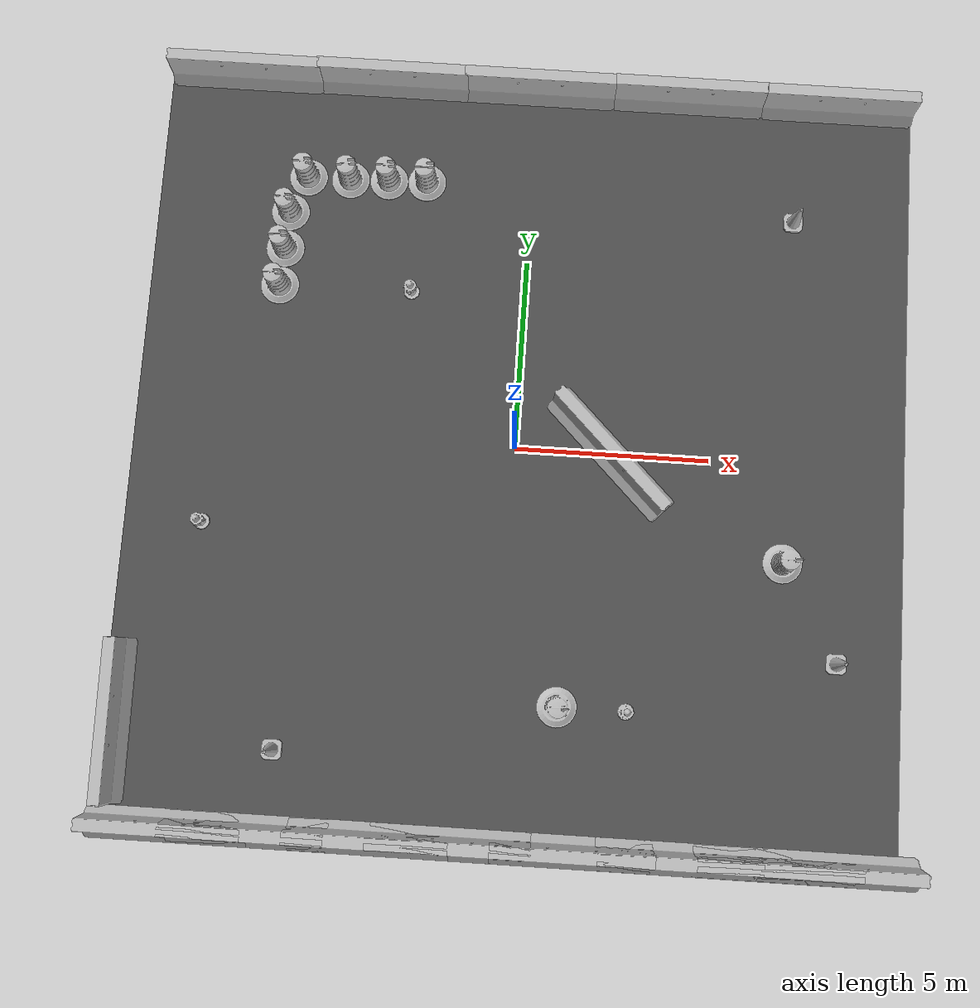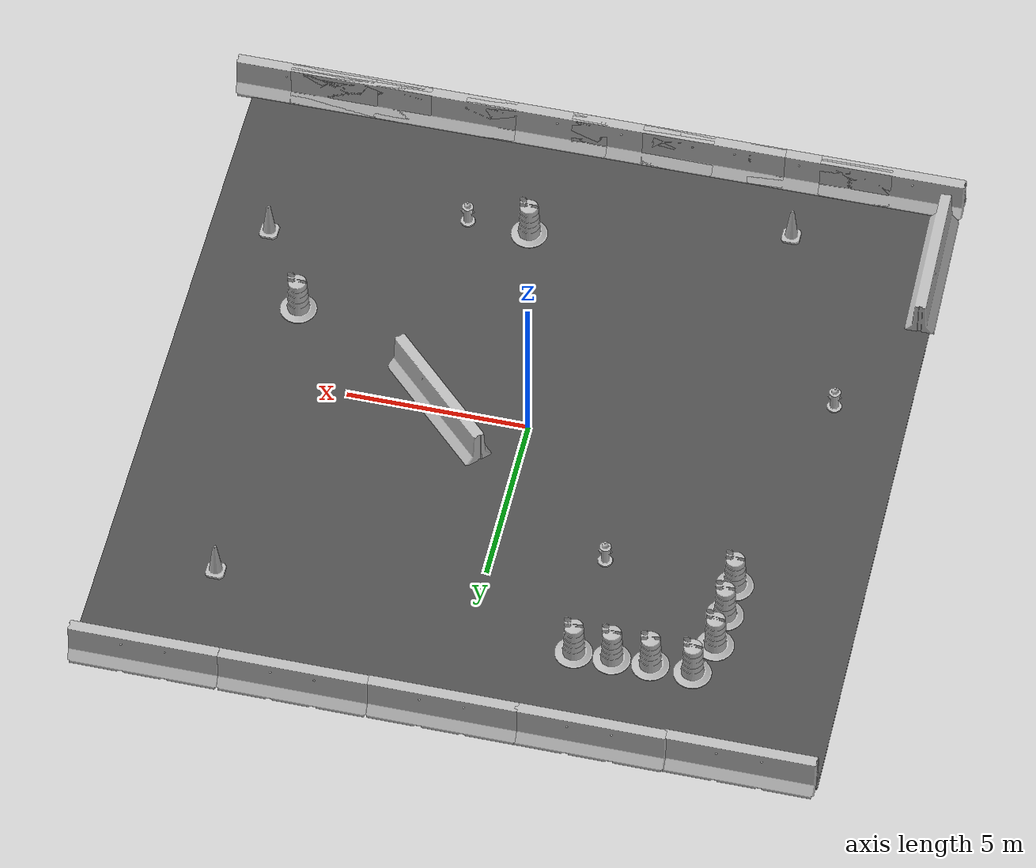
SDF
<sdf version="1.6">
 <world name="default">
  <model name="ground_plane">
   <static>1</static>
   <link name="link">
    <collision name="collision">
     <geometry><plane><normal>0 0 1</normal><size>100 100</size></plane></geometry>
     <surface><friction><ode><mu>100</mu><mu2>50</mu2></ode></friction></surface>
    </collision>
    <visual name="visual">
     <cast_shadows>0</cast_shadows>
     <geometry><plane><normal>0 0 1</normal><size>100 100</size></plane></geometry>
     <material>
      <script><uri>file://media/materials/scripts/gazebo.material</uri><name>Gazebo/Grey</name></script>
     </material>
    </visual>
    <velocity_decay><linear>0</linear><angular>0</angular></velocity_decay>
   </link>
  </model>
  <model name="jersey_barrier">
   <static>1</static>
   <link name="link">
    <visual name="visual">
     <geometry><mesh><uri>model://jersey_barrier/meshes/jersey_barrier.dae</uri></mesh></geometry>
    </visual>
    <collision name="upright">
     <pose>0 0 0.5715 0 -0 0</pose>
     <geometry><box><size>4.06542 0.3063 1.143</size></box></geometry>
    </collision>
    <collision name="base">
     <pose>0 0 0.032258 0 -0 0</pose>
     <geometry><box><size>4.06542 0.8107 0.064516</size></box></geometry>
    </collision>
    <collision name="base2">
     <pose>0 0 0.1 0 -0 0</pose>
     <geometry><box><size>4.06542 0.65 0.1</size></box></geometry>
    </collision>
    <collision name="base3">
     <pose>0 0 0.2 0 -0 0</pose>
     <geometry><box><size>4.06542 0.5 0.1</size></box></geometry>
    </collision>
    <collision name="left-angle">
     <pose>0 -0.224 0.2401 0.9 -0 0</pose>
     <geometry><box><size>4.06542 0.5 0.064516</size></box></geometry>
    </collision>
    <collision name="right-angle">
     <pose>0 0.224 0.2401 -0.9 0 0</pose>
     <geometry><box><size>4.06542 0.5 0.064516</size></box></geometry>
    </collision>
    <velocity_decay><linear>0</linear><angular>0</angular></velocity_decay>
   </link>
   <pose>-8 -10 0 0 -0 0</pose>
  </model>
  <model name="jersey_barrier_0">
   <static>1</static>
   <link name="link">
    <visual name="visual">
     <geometry><mesh><uri>model://jersey_barrier/meshes/jersey_barrier.dae</uri></mesh></geometry>
    </visual>
    <collision name="upright">
     <pose>0 0 0.5715 0 -0 0</pose>
     <geometry><box><size>4.06542 0.3063 1.143</size></box></geometry>
    </collision>
    <collision name="base">
     <pose>0 0 0.032258 0 -0 0</pose>
     <geometry><box><size>4.06542 0.8107 0.064516</size></box></geometry>
    </collision>
    <collision name="base2">
     <pose>0 0 0.1 0 -0 0</pose>
     <geometry><box><size>4.06542 0.65 0.1</size></box></geometry>
    </collision>
    <collision name="base3">
     <pose>0 0 0.2 0 -0 0</pose>
     <geometry><box><size>4.06542 0.5 0.1</size></box></geometry>
    </collision>
    <collision name="left-angle">
     <pose>0 -0.224 0.2401 0.9 -0 0</pose>
     <geometry><box><size>4.06542 0.5 0.064516</size></box></geometry>
    </collision>
    <collision name="right-angle">
     <pose>0 0.224 0.2401 -0.9 0 0</pose>
     <geometry><box><size>4.06542 0.5 0.064516</size></box></geometry>
    </collision>
    <velocity_decay><linear>0</linear><angular>0</angular></velocity_decay>
   </link>
   <pose>-3 -10 0 0 -0 0</pose>
  </model>
  <model name="jersey_barrier_1">
   <static>1</static>
   <link name="link">
    <visual name="visual">
     <geometry><mesh><uri>model://jersey_barrier/meshes/jersey_barrier.dae</uri></mesh></geometry>
    </visual>
    <collision name="upright">
     <pose>0 0 0.5715 0 -0 0</pose>
     <geometry><box><size>4.06542 0.3063 1.143</size></box></geometry>
    </collision>
    <collision name="base">
     <pose>0 0 0.032258 0 -0 0</pose>
     <geometry><box><size>4.06542 0.8107 0.064516</size></box></geometry>
    </collision>
    <collision name="base2">
     <pose>0 0 0.1 0 -0 0</pose>
     <geometry><box><size>4.06542 0.65 0.1</size></box></geometry>
    </collision>
    <collision name="base3">
     <pose>0 0 0.2 0 -0 0</pose>
     <geometry><box><size>4.06542 0.5 0.1</size></box></geometry>
    </collision>
    <collision name="left-angle">
     <pose>0 -0.224 0.2401 0.9 -0 0</pose>
     <geometry><box><size>4.06542 0.5 0.064516</size></box></geometry>
    </collision>
    <collision name="right-angle">
     <pose>0 0.224 0.2401 -0.9 0 0</pose>
     <geometry><box><size>4.06542 0.5 0.064516</size></box></geometry>
    </collision>
    <velocity_decay><linear>0</linear><angular>0</angular></velocity_decay>
   </link>
   <pose>2 -10 0 0 -0 0</pose>
  </model>
  <model name="jersey_barrier_2">
   <static>1</static>
   <link name="link">
    <visual name="visual">
     <geometry><mesh><uri>model://jersey_barrier/meshes/jersey_barrier.dae</uri></mesh></geometry>
    </visual>
    <collision name="upright">
     <pose>0 0 0.5715 0 -0 0</pose>
     <geometry><box><size>4.06542 0.3063 1.143</size></box></geometry>
    </collision>
    <collision name="base">
     <pose>0 0 0.032258 0 -0 0</pose>
     <geometry><box><size>4.06542 0.8107 0.064516</size></box></geometry>
    </collision>
    <collision name="base2">
     <pose>0 0 0.1 0 -0 0</pose>
     <geometry><box><size>4.06542 0.65 0.1</size></box></geometry>
    </collision>
    <collision name="base3">
     <pose>0 0 0.2 0 -0 0</pose>
     <geometry><box><size>4.06542 0.5 0.1</size></box></geometry>
    </collision>
    <collision name="left-angle">
     <pose>0 -0.224 0.2401 0.9 -0 0</pose>
     <geometry><box><size>4.06542 0.5 0.064516</size></box></geometry>
    </collision>
    <collision name="right-angle">
     <pose>0 0.224 0.2401 -0.9 0 0</pose>
     <geometry><box><size>4.06542 0.5 0.064516</size></box></geometry>
    </collision>
    <velocity_decay><linear>0</linear><angular>0</angular></velocity_decay>
   </link>
   <pose>7 -10 0 0 -0 0</pose>
  </model>
  <model name="fire_hydrant">
   <static>1</static>
   <link name="link">
    <collision name="collision">
     <geometry><mesh><uri>model://fire_hydrant/meshes/fire_hydrant.dae</uri></mesh></geometry>
    </collision>
    <visual name="visual">
     <geometry><mesh><uri>model://fire_hydrant/meshes/fire_hydrant.dae</uri></mesh></geometry>
    </visual>
    <velocity_decay><linear>0</linear><angular>0</angular></velocity_decay>
   </link>
   <pose>3.18024 -6.51118 0 0 -0 0</pose>
  </model>
  <model name="fire_hydrant_0">
   <static>1</static>
   <link name="link">
    <collision name="collision">
     <geometry><mesh><uri>model://fire_hydrant/meshes/fire_hydrant.dae</uri></mesh></geometry>
    </collision>
    <visual name="visual">
     <geometry><mesh><uri>model://fire_hydrant/meshes/fire_hydrant.dae</uri></mesh></geometry>
    </visual>
    <velocity_decay><linear>0</linear><angular>0</angular></velocity_decay>
   </link>
   <pose>-3 4 0 0 -0 0</pose>
  </model>
  <model name="fire_hydrant_1">
   <static>1</static>
   <link name="link">
    <collision name="collision">
     <geometry><mesh><uri>model://fire_hydrant/meshes/fire_hydrant.dae</uri></mesh></geometry>
    </collision>
    <visual name="visual">
     <geometry><mesh><uri>model://fire_hydrant/meshes/fire_hydrant.dae</uri></mesh></geometry>
    </visual>
    <velocity_decay><linear>0</linear><angular>0</angular></velocity_decay>
   </link>
   <pose>-7.90686 -2.41363 0 0 -0 0</pose>
  </model>
  <model name="jersey_barrier_15">
   <static>1</static>
   <link name="link">
    <visual name="visual">
     <geometry><mesh><uri>model://jersey_barrier/meshes/jersey_barrier.dae</uri></mesh></geometry>
    </visual>
    <collision name="upright">
     <pose>0 0 0.5715 0 -0 0</pose>
     <geometry><box><size>4.06542 0.3063 1.143</size></box></geometry>
    </collision>
    <collision name="base">
     <pose>0 0 0.032258 0 -0 0</pose>
     <geometry><box><size>4.06542 0.8107 0.064516</size></box></geometry>
    </collision>
    <collision name="base2">
     <pose>0 0 0.1 0 -0 0</pose>
     <geometry><box><size>4.06542 0.65 0.1</size></box></geometry>
    </collision>
    <collision name="base3">
     <pose>0 0 0.2 0 -0 0</pose>
     <geometry><box><size>4.06542 0.5 0.1</size></box></geometry>
    </collision>
    <collision name="left-angle">
     <pose>0 -0.224 0.2401 0.9 -0 0</pose>
     <geometry><box><size>4.06542 0.5 0.064516</size></box></geometry>
    </collision>
    <collision name="right-angle">
     <pose>0 0.224 0.2401 -0.9 0 0</pose>
     <geometry><box><size>4.06542 0.5 0.064516</size></box></geometry>
    </collision>
    <velocity_decay><linear>0</linear><angular>0</angular></velocity_decay>
   </link>
   <pose>2.45495 0 0 0 -0 2.36</pose>
  </model>
  <model name="Construction Cone">
   <link name="link">
    <collision name="collision">
     <geometry>
      <mesh><scale>10 10 10</scale><uri>model://construction_cone/meshes/construction_cone.dae</uri></mesh>
     </geometry>
    </collision>
    <visual name="visual">
     <geometry>
      <mesh><scale>10 10 10</scale><uri>model://construction_cone/meshes/construction_cone.dae</uri></mesh>
     </geometry>
    </visual>
    <velocity_decay><linear>0</linear><angular>0</angular></velocity_decay>
    <inertial>
     <inertia><ixx>1</ixx><ixy>0</ixy><ixz>0</ixz><iyy>1</iyy><iyz>0</iyz><izz>1</izz></inertia>
     <mass>1</mass>
    </inertial>
   </link>
   <pose>-5.59121 -8 0.05 -0 -1e-06 2e-06</pose>
   <static>0</static>
  </model>
  <model name="Construction Barrel">
   <link name="link">
    <inertial>
     <pose>0 0 0.4 0 -0 0</pose>
     <mass>500</mass>
     <inertia><ixx>51.2096</ixx><iyy>51.2096</iyy><izz>25</izz><ixy>0</ixy><ixz>0</ixz><iyz>0</iyz></inertia>
    </inertial>
    <collision name="collision">
     <geometry><mesh><uri>model://construction_barrel/meshes/construction_barrel.dae</uri></mesh></geometry>
    </collision>
    <visual name="visual">
     <geometry><mesh><uri>model://construction_barrel/meshes/construction_barrel.dae</uri></mesh></geometry>
    </visual>
    <velocity_decay><linear>0</linear><angular>0</angular></velocity_decay>
   </link>
   <pose>7.00008 -2.54628 0.049877 0.000487 -3e-06 0.000309</pose>
   <static>0</static>
  </model>
  <model name="Construction Cone_0">
   <link name="link">
    <collision name="collision">
     <geometry>
      <mesh><scale>10 10 10</scale><uri>model://construction_cone/meshes/construction_cone.dae</uri></mesh>
     </geometry>
    </collision>
    <visual name="visual">
     <geometry>
      <mesh><scale>10 10 10</scale><uri>model://construction_cone/meshes/construction_cone.dae</uri></mesh>
     </geometry>
    </visual>
    <velocity_decay><linear>0</linear><angular>0</angular></velocity_decay>
    <inertial>
     <inertia><ixx>1</ixx><ixy>0</ixy><ixz>0</ixz><iyy>1</iyy><iyz>0</iyz><izz>1</izz></inertia>
     <mass>1</mass>
    </inertial>
   </link>
   <pose>6.99685 6.55732 0.05 0 -1e-06 -0.00701</pose>
   <static>0</static>
  </model>
  <model name="Construction Barrel_0">
   <link name="link">
    <inertial>
     <pose>0 0 0.4 0 -0 0</pose>
     <mass>500</mass>
     <inertia><ixx>51.2096</ixx><iyy>51.2096</iyy><izz>25</izz><ixy>0</ixy><ixz>0</ixz><iyz>0</iyz></inertia>
    </inertial>
    <collision name="collision">
     <geometry><mesh><uri>model://construction_barrel/meshes/construction_barrel.dae</uri></mesh></geometry>
    </collision>
    <visual name="visual">
     <geometry><mesh><uri>model://construction_barrel/meshes/construction_barrel.dae</uri></mesh></geometry>
    </visual>
    <velocity_decay><linear>0</linear><angular>0</angular></velocity_decay>
   </link>
   <pose>1.4518 -6.51121 0.049917 -0.000164 -0.000339 -5.5e-05</pose>
   <static>0</static>
  </model>
  <model name="asphalt_plane">
   <static>1</static>
   <link name="link">
    <collision name="collision"><geometry><box><size>20 20 0.1</size></box></geometry></collision>
    <visual name="visual">
     <cast_shadows>0</cast_shadows>
     <geometry><box><size>20 20 0.1</size></box></geometry>
     <material>
      <script>
       <uri>model://asphalt_plane/materials/scripts</uri>
       <uri>model://asphalt_plane/materials/textures</uri>
       <name>vrc/asphalt</name>
      </script>
     </material>
    </visual>
    <velocity_decay><linear>0</linear><angular>0</angular></velocity_decay>
   </link>
   <pose>0.076733 -0.110379 0 0 -0 0</pose>
  </model>
  <model name="Construction Barrel_1">
   <link name="link">
    <inertial>
     <pose>0 0 0.4 0 -0 0</pose>
     <mass>500</mass>
     <inertia><ixx>51.2096</ixx><iyy>51.2096</iyy><izz>25</izz><ixy>0</ixy><ixz>0</ixz><iyz>0</iyz></inertia>
    </inertial>
    <collision name="collision">
     <geometry><mesh><uri>model://construction_barrel/meshes/construction_barrel.dae</uri></mesh></geometry>
    </collision>
    <visual name="visual">
     <geometry><mesh><uri>model://construction_barrel/meshes/construction_barrel.dae</uri></mesh></geometry>
    </visual>
    <velocity_decay><linear>0</linear><angular>0</angular></velocity_decay>
   </link>
   <pose>-6.50467 3.98277 0.049886 0.000435 0.000115 -0.009564</pose>
   <static>0</static>
  </model>
  <model name="Construction Barrel_2">
   <link name="link">
    <inertial>
     <pose>0 0 0.4 0 -0 0</pose>
     <mass>500</mass>
     <inertia><ixx>51.2096</ixx><iyy>51.2096</iyy><izz>25</izz><ixy>0</ixy><ixz>0</ixz><iyz>0</iyz></inertia>
    </inertial>
    <collision name="collision">
     <geometry><mesh><uri>model://construction_barrel/meshes/construction_barrel.dae</uri></mesh></geometry>
    </collision>
    <visual name="visual">
     <geometry><mesh><uri>model://construction_barrel/meshes/construction_barrel.dae</uri></mesh></geometry>
    </visual>
    <velocity_decay><linear>0</linear><angular>0</angular></velocity_decay>
   </link>
   <pose>-6.45061 4.99646 0.04991 -0.000176 -0.000354 0.064909</pose>
   <static>0</static>
  </model>
  <model name="Construction Barrel_3">
   <link name="link">
    <inertial>
     <pose>0 0 0.4 0 -0 0</pose>
     <mass>500</mass>
     <inertia><ixx>51.2096</ixx><iyy>51.2096</iyy><izz>25</izz><ixy>0</ixy><ixz>0</ixz><iyz>0</iyz></inertia>
    </inertial>
    <collision name="collision">
     <geometry><mesh><uri>model://construction_barrel/meshes/construction_barrel.dae</uri></mesh></geometry>
    </collision>
    <visual name="visual">
     <geometry><mesh><uri>model://construction_barrel/meshes/construction_barrel.dae</uri></mesh></geometry>
    </visual>
    <velocity_decay><linear>0</linear><angular>0</angular></velocity_decay>
   </link>
   <pose>-6.4017 6.01119 0.049863 -0.000145 -0.0005 -0.120744</pose>
   <static>0</static>
  </model>
  <model name="Construction Barrel_4">
   <link name="link">
    <inertial>
     <pose>0 0 0.4 0 -0 0</pose>
     <mass>500</mass>
     <inertia><ixx>51.2096</ixx><iyy>51.2096</iyy><izz>25</izz><ixy>0</ixy><ixz>0</ixz><iyz>0</iyz></inertia>
    </inertial>
    <collision name="collision">
     <geometry><mesh><uri>model://construction_barrel/meshes/construction_barrel.dae</uri></mesh></geometry>
    </collision>
    <visual name="visual">
     <geometry><mesh><uri>model://construction_barrel/meshes/construction_barrel.dae</uri></mesh></geometry>
    </visual>
    <velocity_decay><linear>0</linear><angular>0</angular></velocity_decay>
   </link>
   <pose>-6.0062 7.00897 0.0499 0.000407 9.3e-05 -0.049538</pose>
   <static>0</static>
  </model>
  <model name="Construction Barrel_5">
   <link name="link">
    <inertial>
     <pose>0 0 0.4 0 -0 0</pose>
     <mass>500</mass>
     <inertia><ixx>51.2096</ixx><iyy>51.2096</iyy><izz>25</izz><ixy>0</ixy><ixz>0</ixz><iyz>0</iyz></inertia>
    </inertial>
    <collision name="collision">
     <geometry><mesh><uri>model://construction_barrel/meshes/construction_barrel.dae</uri></mesh></geometry>
    </collision>
    <visual name="visual">
     <geometry><mesh><uri>model://construction_barrel/meshes/construction_barrel.dae</uri></mesh></geometry>
    </visual>
    <velocity_decay><linear>0</linear><angular>0</angular></velocity_decay>
   </link>
   <pose>-4.8756 7.0082 0.049921 -0.000156 -0.000328 0.146114</pose>
   <static>0</static>
  </model>
  <model name="Construction Barrel_6">
   <link name="link">
    <inertial>
     <pose>0 0 0.4 0 -0 0</pose>
     <mass>500</mass>
     <inertia><ixx>51.2096</ixx><iyy>51.2096</iyy><izz>25</izz><ixy>0</ixy><ixz>0</ixz><iyz>0</iyz></inertia>
    </inertial>
    <collision name="collision">
     <geometry><mesh><uri>model://construction_barrel/meshes/construction_barrel.dae</uri></mesh></geometry>
    </collision>
    <visual name="visual">
     <geometry><mesh><uri>model://construction_barrel/meshes/construction_barrel.dae</uri></mesh></geometry>
    </visual>
    <velocity_decay><linear>0</linear><angular>0</angular></velocity_decay>
   </link>
   <pose>-3.84411 7.04008 0.049888 1e-06 -0.000441 0.022475</pose>
   <static>0</static>
  </model>
  <model name="Construction Barrel_7">
   <link name="link">
    <inertial>
     <pose>0 0 0.4 0 -0 0</pose>
     <mass>500</mass>
     <inertia><ixx>51.2096</ixx><iyy>51.2096</iyy><izz>25</izz><ixy>0</ixy><ixz>0</ixz><iyz>0</iyz></inertia>
    </inertial>
    <collision name="collision">
     <geometry><mesh><uri>model://construction_barrel/meshes/construction_barrel.dae</uri></mesh></geometry>
    </collision>
    <visual name="visual">
     <geometry><mesh><uri>model://construction_barrel/meshes/construction_barrel.dae</uri></mesh></geometry>
    </visual>
    <velocity_decay><linear>0</linear><angular>0</angular></velocity_decay>
   </link>
   <pose>-2.82746 7.06011 0.049884 -0.000115 -0.000453 0.075127</pose>
   <static>0</static>
  </model>
  <model name="Construction Cone_1">
   <link name="link">
    <collision name="collision">
     <geometry>
      <mesh><scale>10 10 10</scale><uri>model://construction_cone/meshes/construction_cone.dae</uri></mesh>
     </geometry>
    </collision>
    <visual name="visual">
     <geometry>
      <mesh><scale>10 10 10</scale><uri>model://construction_cone/meshes/construction_cone.dae</uri></mesh>
     </geometry>
    </visual>
    <velocity_decay><linear>0</linear><angular>0</angular></velocity_decay>
    <inertial>
     <inertia><ixx>1</ixx><ixy>0</ixy><ixz>0</ixz><iyy>1</iyy><iyz>0</iyz><izz>1</izz></inertia>
     <mass>1</mass>
    </inertial>
   </link>
   <pose>8.42887 -5 0.04902 1e-06 -0 2e-06</pose>
   <static>0</static>
  </model>
  <model name="jersey_barrier_16">
   <static>1</static>
   <link name="link">
    <visual name="visual">
     <geometry><mesh><uri>model://jersey_barrier/meshes/jersey_barrier.dae</uri></mesh></geometry>
    </visual>
    <collision name="upright">
     <pose>0 0 0.5715 0 -0 0</pose>
     <geometry><box><size>4.06542 0.3063 1.143</size></box></geometry>
    </collision>
    <collision name="base">
     <pose>0 0 0.032258 0 -0 0</pose>
     <geometry><box><size>4.06542 0.8107 0.064516</size></box></geometry>
    </collision>
    <collision name="base2">
     <pose>0 0 0.1 0 -0 0</pose>
     <geometry><box><size>4.06542 0.65 0.1</size></box></geometry>
    </collision>
    <collision name="base3">
     <pose>0 0 0.2 0 -0 0</pose>
     <geometry><box><size>4.06542 0.5 0.1</size></box></geometry>
    </collision>
    <collision name="left-angle">
     <pose>0 -0.224 0.2401 0.9 -0 0</pose>
     <geometry><box><size>4.06542 0.5 0.064516</size></box></geometry>
    </collision>
    <collision name="right-angle">
     <pose>0 0.224 0.2401 -0.9 0 0</pose>
     <geometry><box><size>4.06542 0.5 0.064516</size></box></geometry>
    </collision>
   </link>
   <pose>4.59491 -10 0 0 -0 0</pose>
  </model>
  <model name="jersey_barrier_17">
   <static>1</static>
   <link name="link">
    <visual name="visual">
     <geometry><mesh><uri>model://jersey_barrier/meshes/jersey_barrier.dae</uri></mesh></geometry>
    </visual>
    <collision name="upright">
     <pose>0 0 0.5715 0 -0 0</pose>
     <geometry><box><size>4.06542 0.3063 1.143</size></box></geometry>
    </collision>
    <collision name="base">
     <pose>0 0 0.032258 0 -0 0</pose>
     <geometry><box><size>4.06542 0.8107 0.064516</size></box></geometry>
    </collision>
    <collision name="base2">
     <pose>0 0 0.1 0 -0 0</pose>
     <geometry><box><size>4.06542 0.65 0.1</size></box></geometry>
    </collision>
    <collision name="base3">
     <pose>0 0 0.2 0 -0 0</pose>
     <geometry><box><size>4.06542 0.5 0.1</size></box></geometry>
    </collision>
    <collision name="left-angle">
     <pose>0 -0.224 0.2401 0.9 -0 0</pose>
     <geometry><box><size>4.06542 0.5 0.064516</size></box></geometry>
    </collision>
    <collision name="right-angle">
     <pose>0 0.224 0.2401 -0.9 0 0</pose>
     <geometry><box><size>4.06542 0.5 0.064516</size></box></geometry>
    </collision>
   </link>
   <pose>-1 -10 0 0 -0 0</pose>
  </model>
  <model name="jersey_barrier_18">
   <static>1</static>
   <link name="link">
    <visual name="visual">
     <geometry><mesh><uri>model://jersey_barrier/meshes/jersey_barrier.dae</uri></mesh></geometry>
    </visual>
    <collision name="upright">
     <pose>0 0 0.5715 0 -0 0</pose>
     <geometry><box><size>4.06542 0.3063 1.143</size></box></geometry>
    </collision>
    <collision name="base">
     <pose>0 0 0.032258 0 -0 0</pose>
     <geometry><box><size>4.06542 0.8107 0.064516</size></box></geometry>
    </collision>
    <collision name="base2">
     <pose>0 0 0.1 0 -0 0</pose>
     <geometry><box><size>4.06542 0.65 0.1</size></box></geometry>
    </collision>
    <collision name="base3">
     <pose>0 0 0.2 0 -0 0</pose>
     <geometry><box><size>4.06542 0.5 0.1</size></box></geometry>
    </collision>
    <collision name="left-angle">
     <pose>0 -0.224 0.2401 0.9 -0 0</pose>
     <geometry><box><size>4.06542 0.5 0.064516</size></box></geometry>
    </collision>
    <collision name="right-angle">
     <pose>0 0.224 0.2401 -0.9 0 0</pose>
     <geometry><box><size>4.06542 0.5 0.064516</size></box></geometry>
    </collision>
   </link>
   <pose>-6 -10 0 0 -0 0</pose>
  </model>
  <model name="jersey_barrier_19">
   <static>1</static>
   <link name="link">
    <visual name="visual">
     <geometry><mesh><uri>model://jersey_barrier/meshes/jersey_barrier.dae</uri></mesh></geometry>
    </visual>
    <collision name="upright">
     <pose>0 0 0.5715 0 -0 0</pose>
     <geometry><box><size>4.06542 0.3063 1.143</size></box></geometry>
    </collision>
    <collision name="base">
     <pose>0 0 0.032258 0 -0 0</pose>
     <geometry><box><size>4.06542 0.8107 0.064516</size></box></geometry>
    </collision>
    <collision name="base2">
     <pose>0 0 0.1 0 -0 0</pose>
     <geometry><box><size>4.06542 0.65 0.1</size></box></geometry>
    </collision>
    <collision name="base3">
     <pose>0 0 0.2 0 -0 0</pose>
     <geometry><box><size>4.06542 0.5 0.1</size></box></geometry>
    </collision>
    <collision name="left-angle">
     <pose>0 -0.224 0.2401 0.9 -0 0</pose>
     <geometry><box><size>4.06542 0.5 0.064516</size></box></geometry>
    </collision>
    <collision name="right-angle">
     <pose>0 0.224 0.2401 -0.9 0 0</pose>
     <geometry><box><size>4.06542 0.5 0.064516</size></box></geometry>
    </collision>
   </link>
   <pose>8.53416 -10 0 0 -0 0</pose>
  </model>
  <model name="jersey_barrier_3">
   <static>1</static>
   <link name="link">
    <visual name="visual">
     <geometry><mesh><uri>model://jersey_barrier/meshes/jersey_barrier.dae</uri></mesh></geometry>
    </visual>
    <collision name="upright">
     <pose>0 0 0.5715 0 -0 0</pose>
     <geometry><box><size>4.06542 0.3063 1.143</size></box></geometry>
    </collision>
    <collision name="base">
     <pose>0 0 0.032258 0 -0 0</pose>
     <geometry><box><size>4.06542 0.8107 0.064516</size></box></geometry>
    </collision>
    <collision name="base2">
     <pose>0 0 0.1 0 -0 0</pose>
     <geometry><box><size>4.06542 0.65 0.1</size></box></geometry>
    </collision>
    <collision name="base3">
     <pose>0 0 0.2 0 -0 0</pose>
     <geometry><box><size>4.06542 0.5 0.1</size></box></geometry>
    </collision>
    <collision name="left-angle">
     <pose>0 -0.224 0.2401 0.9 -0 0</pose>
     <geometry><box><size>4.06542 0.5 0.064516</size></box></geometry>
    </collision>
    <collision name="right-angle">
     <pose>0 0.224 0.2401 -0.9 0 0</pose>
     <geometry><box><size>4.06542 0.5 0.064516</size></box></geometry>
    </collision>
   </link>
   <pose>8.05371 9.8555 0 0 -0 0</pose>
  </model>
  <model name="jersey_barrier_4">
   <static>1</static>
   <link name="link">
    <visual name="visual">
     <geometry><mesh><uri>model://jersey_barrier/meshes/jersey_barrier.dae</uri></mesh></geometry>
    </visual>
    <collision name="upright">
     <pose>0 0 0.5715 0 -0 0</pose>
     <geometry><box><size>4.06542 0.3063 1.143</size></box></geometry>
    </collision>
    <collision name="base">
     <pose>0 0 0.032258 0 -0 0</pose>
     <geometry><box><size>4.06542 0.8107 0.064516</size></box></geometry>
    </collision>
    <collision name="base2">
     <pose>0 0 0.1 0 -0 0</pose>
     <geometry><box><size>4.06542 0.65 0.1</size></box></geometry>
    </collision>
    <collision name="base3">
     <pose>0 0 0.2 0 -0 0</pose>
     <geometry><box><size>4.06542 0.5 0.1</size></box></geometry>
    </collision>
    <collision name="left-angle">
     <pose>0 -0.224 0.2401 0.9 -0 0</pose>
     <geometry><box><size>4.06542 0.5 0.064516</size></box></geometry>
    </collision>
    <collision name="right-angle">
     <pose>0 0.224 0.2401 -0.9 0 0</pose>
     <geometry><box><size>4.06542 0.5 0.064516</size></box></geometry>
    </collision>
   </link>
   <pose>4.03403 9.85763 0 0 -0 0</pose>
  </model>
  <model name="jersey_barrier_5">
   <static>1</static>
   <link name="link">
    <visual name="visual">
     <geometry><mesh><uri>model://jersey_barrier/meshes/jersey_barrier.dae</uri></mesh></geometry>
    </visual>
    <collision name="upright">
     <pose>0 0 0.5715 0 -0 0</pose>
     <geometry><box><size>4.06542 0.3063 1.143</size></box></geometry>
    </collision>
    <collision name="base">
     <pose>0 0 0.032258 0 -0 0</pose>
     <geometry><box><size>4.06542 0.8107 0.064516</size></box></geometry>
    </collision>
    <collision name="base2">
     <pose>0 0 0.1 0 -0 0</pose>
     <geometry><box><size>4.06542 0.65 0.1</size></box></geometry>
    </collision>
    <collision name="base3">
     <pose>0 0 0.2 0 -0 0</pose>
     <geometry><box><size>4.06542 0.5 0.1</size></box></geometry>
    </collision>
    <collision name="left-angle">
     <pose>0 -0.224 0.2401 0.9 -0 0</pose>
     <geometry><box><size>4.06542 0.5 0.064516</size></box></geometry>
    </collision>
    <collision name="right-angle">
     <pose>0 0.224 0.2401 -0.9 0 0</pose>
     <geometry><box><size>4.06542 0.5 0.064516</size></box></geometry>
    </collision>
   </link>
   <pose>0.036818 9.84503 0 0 -0 0</pose>
  </model>
  <model name="jersey_barrier_6">
   <static>1</static>
   <link name="link">
    <visual name="visual">
     <geometry><mesh><uri>model://jersey_barrier/meshes/jersey_barrier.dae</uri></mesh></geometry>
    </visual>
    <collision name="upright">
     <pose>0 0 0.5715 0 -0 0</pose>
     <geometry><box><size>4.06542 0.3063 1.143</size></box></geometry>
    </collision>
    <collision name="base">
     <pose>0 0 0.032258 0 -0 0</pose>
     <geometry><box><size>4.06542 0.8107 0.064516</size></box></geometry>
    </collision>
    <collision name="base2">
     <pose>0 0 0.1 0 -0 0</pose>
     <geometry><box><size>4.06542 0.65 0.1</size></box></geometry>
    </collision>
    <collision name="base3">
     <pose>0 0 0.2 0 -0 0</pose>
     <geometry><box><size>4.06542 0.5 0.1</size></box></geometry>
    </collision>
    <collision name="left-angle">
     <pose>0 -0.224 0.2401 0.9 -0 0</pose>
     <geometry><box><size>4.06542 0.5 0.064516</size></box></geometry>
    </collision>
    <collision name="right-angle">
     <pose>0 0.224 0.2401 -0.9 0 0</pose>
     <geometry><box><size>4.06542 0.5 0.064516</size></box></geometry>
    </collision>
   </link>
   <pose>-3.89008 9.84145 0 0 -0 0</pose>
  </model>
  <model name="jersey_barrier_7">
   <static>1</static>
   <link name="link">
    <visual name="visual">
     <geometry><mesh><uri>model://jersey_barrier/meshes/jersey_barrier.dae</uri></mesh></geometry>
    </visual>
    <collision name="upright">
     <pose>0 0 0.5715 0 -0 0</pose>
     <geometry><box><size>4.06542 0.3063 1.143</size></box></geometry>
    </collision>
    <collision name="base">
     <pose>0 0 0.032258 0 -0 0</pose>
     <geometry><box><size>4.06542 0.8107 0.064516</size></box></geometry>
    </collision>
    <collision name="base2">
     <pose>0 0 0.1 0 -0 0</pose>
     <geometry><box><size>4.06542 0.65 0.1</size></box></geometry>
    </collision>
    <collision name="base3">
     <pose>0 0 0.2 0 -0 0</pose>
     <geometry><box><size>4.06542 0.5 0.1</size></box></geometry>
    </collision>
    <collision name="left-angle">
     <pose>0 -0.224 0.2401 0.9 -0 0</pose>
     <geometry><box><size>4.06542 0.5 0.064516</size></box></geometry>
    </collision>
    <collision name="right-angle">
     <pose>0 0.224 0.2401 -0.9 0 0</pose>
     <geometry><box><size>4.06542 0.5 0.064516</size></box></geometry>
    </collision>
   </link>
   <pose>-7.85087 9.81358 0 0 -0 0</pose>
  </model>
  <model name="jersey_barrier_8_clone_2">
   <link name="link">
    <pose>-0.727355 1.16834 0 0 -0 1.58626</pose>
    <visual name="visual">
     <geometry><mesh><uri>model://jersey_barrier/meshes/jersey_barrier.dae</uri></mesh></geometry>
     <material><shader type="pixel"/></material>
    </visual>
    <collision name="upright">
     <pose>0 0 0.5715 0 -0 0</pose>
     <geometry><box><size>4.06542 0.3063 1.143</size></box></geometry>
     <surface>
      <friction>
       <ode><mu>1</mu><mu2>1</mu2><fdir1>0 0 0</fdir1><slip1>0</slip1><slip2>0</slip2></ode>
       <torsional>
        <coefficient>1</coefficient>
        <patch_radius>0</patch_radius>
        <surface_radius>0</surface_radius>
        <use_patch_radius>1</use_patch_radius>
        <ode><slip>0</slip></ode>
       </torsional>
      </friction>
      <bounce><restitution_coefficient>0</restitution_coefficient><threshold>1e+06</threshold></bounce>
      <contact>
       <collide_without_contact>0</collide_without_contact>
       <collide_without_contact_bitmask>1</collide_without_contact_bitmask>
       <collide_bitmask>1</collide_bitmask>
       <ode>
        <soft_cfm>0</soft_cfm>
        <soft_erp>0.2</soft_erp>
        <kp>1e+13</kp>
        <kd>1</kd>
        <max_vel>0.01</max_vel>
        <min_depth>0</min_depth>
       </ode>
       <bullet>
        <split_impulse>1</split_impulse>
        <split_impulse_penetration_threshold>-0.01</split_impulse_penetration_threshold>
        <soft_cfm>0</soft_cfm>
        <soft_erp>0.2</soft_erp>
        <kp>1e+13</kp>
        <kd>1</kd>
       </bullet>
      </contact>
     </surface>
    </collision>
    <collision name="base">
     <pose>0 0 0.032258 0 -0 0</pose>
     <geometry><box><size>4.06542 0.8107 0.064516</size></box></geometry>
     <surface>
      <friction>
       <ode><mu>1</mu><mu2>1</mu2><fdir1>0 0 0</fdir1><slip1>0</slip1><slip2>0</slip2></ode>
       <torsional>
        <coefficient>1</coefficient>
        <patch_radius>0</patch_radius>
        <surface_radius>0</surface_radius>
        <use_patch_radius>1</use_patch_radius>
        <ode><slip>0</slip></ode>
       </torsional>
      </friction>
      <bounce><restitution_coefficient>0</restitution_coefficient><threshold>1e+06</threshold></bounce>
      <contact>
       <collide_without_contact>0</collide_without_contact>
       <collide_without_contact_bitmask>1</collide_without_contact_bitmask>
       <collide_bitmask>1</collide_bitmask>
       <ode>
        <soft_cfm>0</soft_cfm>
        <soft_erp>0.2</soft_erp>
        <kp>1e+13</kp>
        <kd>1</kd>
        <max_vel>0.01</max_vel>
        <min_depth>0</min_depth>
       </ode>
       <bullet>
        <split_impulse>1</split_impulse>
        <split_impulse_penetration_threshold>-0.01</split_impulse_penetration_threshold>
        <soft_cfm>0</soft_cfm>
        <soft_erp>0.2</soft_erp>
        <kp>1e+13</kp>
        <kd>1</kd>
       </bullet>
      </contact>
     </surface>
    </collision>
    <collision name="base2">
     <pose>0 0 0.1 0 -0 0</pose>
     <geometry><box><size>4.06542 0.65 0.1</size></box></geometry>
     <surface>
      <friction>
       <ode><mu>1</mu><mu2>1</mu2><fdir1>0 0 0</fdir1><slip1>0</slip1><slip2>0</slip2></ode>
       <torsional>
        <coefficient>1</coefficient>
        <patch_radius>0</patch_radius>
        <surface_radius>0</surface_radius>
        <use_patch_radius>1</use_patch_radius>
        <ode><slip>0</slip></ode>
       </torsional>
      </friction>
      <bounce><restitution_coefficient>0</restitution_coefficient><threshold>1e+06</threshold></bounce>
      <contact>
       <collide_without_contact>0</collide_without_contact>
       <collide_without_contact_bitmask>1</collide_without_contact_bitmask>
       <collide_bitmask>1</collide_bitmask>
       <ode>
        <soft_cfm>0</soft_cfm>
        <soft_erp>0.2</soft_erp>
        <kp>1e+13</kp>
        <kd>1</kd>
        <max_vel>0.01</max_vel>
        <min_depth>0</min_depth>
       </ode>
       <bullet>
        <split_impulse>1</split_impulse>
        <split_impulse_penetration_threshold>-0.01</split_impulse_penetration_threshold>
        <soft_cfm>0</soft_cfm>
        <soft_erp>0.2</soft_erp>
        <kp>1e+13</kp>
        <kd>1</kd>
       </bullet>
      </contact>
     </surface>
    </collision>
    <collision name="base3">
     <pose>0 0 0.2 0 -0 0</pose>
     <geometry><box><size>4.06542 0.5 0.1</size></box></geometry>
     <surface>
      <friction>
       <ode><mu>1</mu><mu2>1</mu2><fdir1>0 0 0</fdir1><slip1>0</slip1><slip2>0</slip2></ode>
       <torsional>
        <coefficient>1</coefficient>
        <patch_radius>0</patch_radius>
        <surface_radius>0</surface_radius>
        <use_patch_radius>1</use_patch_radius>
        <ode><slip>0</slip></ode>
       </torsional>
      </friction>
      <bounce><restitution_coefficient>0</restitution_coefficient><threshold>1e+06</threshold></bounce>
      <contact>
       <collide_without_contact>0</collide_without_contact>
       <collide_without_contact_bitmask>1</collide_without_contact_bitmask>
       <collide_bitmask>1</collide_bitmask>
       <ode>
        <soft_cfm>0</soft_cfm>
        <soft_erp>0.2</soft_erp>
        <kp>1e+13</kp>
        <kd>1</kd>
        <max_vel>0.01</max_vel>
        <min_depth>0</min_depth>
       </ode>
       <bullet>
        <split_impulse>1</split_impulse>
        <split_impulse_penetration_threshold>-0.01</split_impulse_penetration_threshold>
        <soft_cfm>0</soft_cfm>
        <soft_erp>0.2</soft_erp>
        <kp>1e+13</kp>
        <kd>1</kd>
       </bullet>
      </contact>
     </surface>
    </collision>
    <collision name="left-angle">
     <pose>0 -0.224 0.2401 0.9 -0 0</pose>
     <geometry><box><size>4.06542 0.5 0.064516</size></box></geometry>
     <surface>
      <friction>
       <ode><mu>1</mu><mu2>1</mu2><fdir1>0 0 0</fdir1><slip1>0</slip1><slip2>0</slip2></ode>
       <torsional>
        <coefficient>1</coefficient>
        <patch_radius>0</patch_radius>
        <surface_radius>0</surface_radius>
        <use_patch_radius>1</use_patch_radius>
        <ode><slip>0</slip></ode>
       </torsional>
      </friction>
      <bounce><restitution_coefficient>0</restitution_coefficient><threshold>1e+06</threshold></bounce>
      <contact>
       <collide_without_contact>0</collide_without_contact>
       <collide_without_contact_bitmask>1</collide_without_contact_bitmask>
       <collide_bitmask>1</collide_bitmask>
       <ode>
        <soft_cfm>0</soft_cfm>
        <soft_erp>0.2</soft_erp>
        <kp>1e+13</kp>
        <kd>1</kd>
        <max_vel>0.01</max_vel>
        <min_depth>0</min_depth>
       </ode>
       <bullet>
        <split_impulse>1</split_impulse>
        <split_impulse_penetration_threshold>-0.01</split_impulse_penetration_threshold>
        <soft_cfm>0</soft_cfm>
        <soft_erp>0.2</soft_erp>
        <kp>1e+13</kp>
        <kd>1</kd>
       </bullet>
      </contact>
     </surface>
    </collision>
    <collision name="right-angle">
     <pose>0 0.224 0.2401 -0.9 0 0</pose>
     <geometry><box><size>4.06542 0.5 0.064516</size></box></geometry>
     <surface>
      <friction>
       <ode><mu>1</mu><mu2>1</mu2><fdir1>0 0 0</fdir1><slip1>0</slip1><slip2>0</slip2></ode>
       <torsional>
        <coefficient>1</coefficient>
        <patch_radius>0</patch_radius>
        <surface_radius>0</surface_radius>
        <use_patch_radius>1</use_patch_radius>
        <ode><slip>0</slip></ode>
       </torsional>
      </friction>
      <bounce><restitution_coefficient>0</restitution_coefficient><threshold>1e+06</threshold></bounce>
      <contact>
       <collide_without_contact>0</collide_without_contact>
       <collide_without_contact_bitmask>1</collide_without_contact_bitmask>
       <collide_bitmask>1</collide_bitmask>
       <ode>
        <soft_cfm>0</soft_cfm>
        <soft_erp>0.2</soft_erp>
        <kp>1e+13</kp>
        <kd>1</kd>
        <max_vel>0.01</max_vel>
        <min_depth>0</min_depth>
       </ode>
       <bullet>
        <split_impulse>1</split_impulse>
        <split_impulse_penetration_threshold>-0.01</split_impulse_penetration_threshold>
        <soft_cfm>0</soft_cfm>
        <soft_erp>0.2</soft_erp>
        <kp>1e+13</kp>
        <kd>1</kd>
       </bullet>
      </contact>
     </surface>
    </collision>
   </link>
   <static>1</static>
   <pose>-8.87959 -8.68514 0 0 -0 0</pose>
  </model>
 </world>
</sdf>
